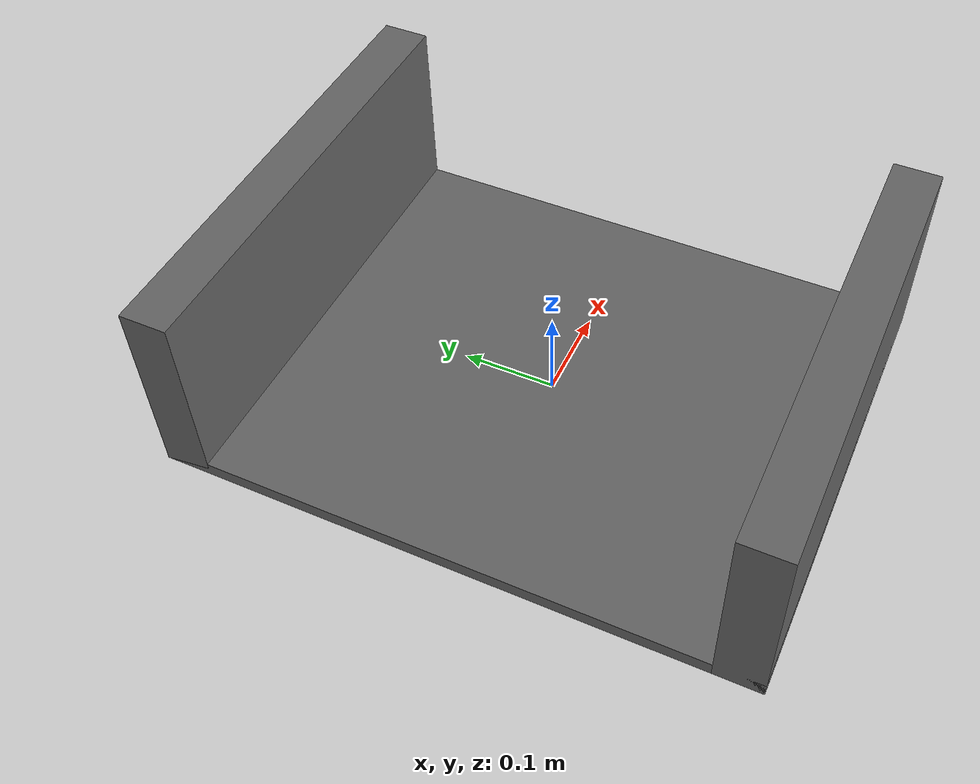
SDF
<?xml version="1.0"?>
<sdf version="1.7">
  <model name="bin_model">
    <!--
    Axes:
      +X - Pointing towards the front (open)
      +Y - Pointing to left side
      +Z - Up
    Origin:
      (0, 0, 0) at the center bottom of the bin
    -->
    <link name="bin_base">
      <inertial>
        <mass>18.70</mass>
        <inertia>
          <ixx>0.79</ixx>
          <ixy>0</ixy>
          <ixz>0</ixz>
          <iyy>0.53</iyy>
          <iyz>0</iyz>
          <izz>1.2</izz>
        </inertia>
      </inertial>
      <visual name="left">
        <pose>0 0.29 0.105 0 0 0</pose>
        <geometry>
          <box>
            <size>0.49 0.05 0.21</size>
          </box>
        </geometry>
        <material>
          <diffuse>0.4 0.4 0.4 1.0</diffuse>
        </material>
      </visual>
      <collision name="left">
        <pose>0 0.29 0.105 0 0 0</pose>
        <geometry>
          <box>
            <size>0.49 0.05 0.21</size>
          </box>
        </geometry>
        <drake:proximity_properties>
          <drake:compliant_hydroelastic/>
          <drake:hydroelastic_modulus>1.0e8</drake:hydroelastic_modulus>
        </drake:proximity_properties>
      </collision>
      <visual name="right">
        <pose>0 -0.29 0.105 0 0 0</pose>
        <geometry>
          <box>
            <size>0.49 0.05 0.21</size>
          </box>
        </geometry>
        <material>
          <diffuse>0.4 0.4 0.4 1.0</diffuse>
        </material>
      </visual>
      <collision name="right">
        <pose>0 -0.29 0.105 0 0 0</pose>
        <geometry>
          <box>
            <size>0.49 0.05 0.21</size>
          </box>
        </geometry>
        <drake:proximity_properties>
          <drake:compliant_hydroelastic/>
          <drake:hydroelastic_modulus>1.0e8</drake:hydroelastic_modulus>
        </drake:proximity_properties>
      </collision>
      <visual name="bottom">
        <pose>0.0 0.0 0.0075 0 0 0</pose>
        <geometry>
          <box>
            <size>0.49 0.63 0.015</size>
          </box>
        </geometry>
        <material>
          <diffuse>0.4 0.4 0.4 1.0</diffuse>
        </material>
      </visual>
      <collision name="bottom">
        <pose>0.0 0.0 0.0075 0 0 0</pose>
        <geometry>
          <box>
            <size>0.49 0.63 0.015</size>
          </box>
        </geometry>
        <drake:proximity_properties>
          <drake:compliant_hydroelastic/>
          <drake:hydroelastic_modulus>1.0e8</drake:hydroelastic_modulus>
        </drake:proximity_properties>
      </collision>
    </link>
  </model>
</sdf>
